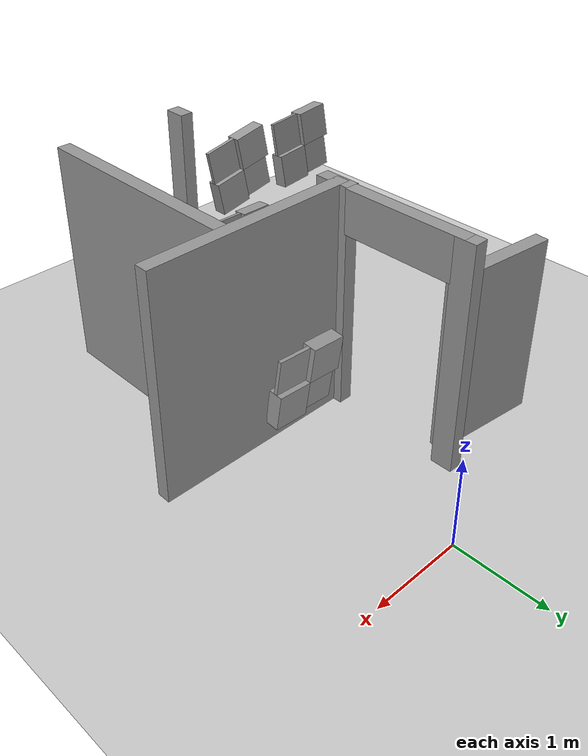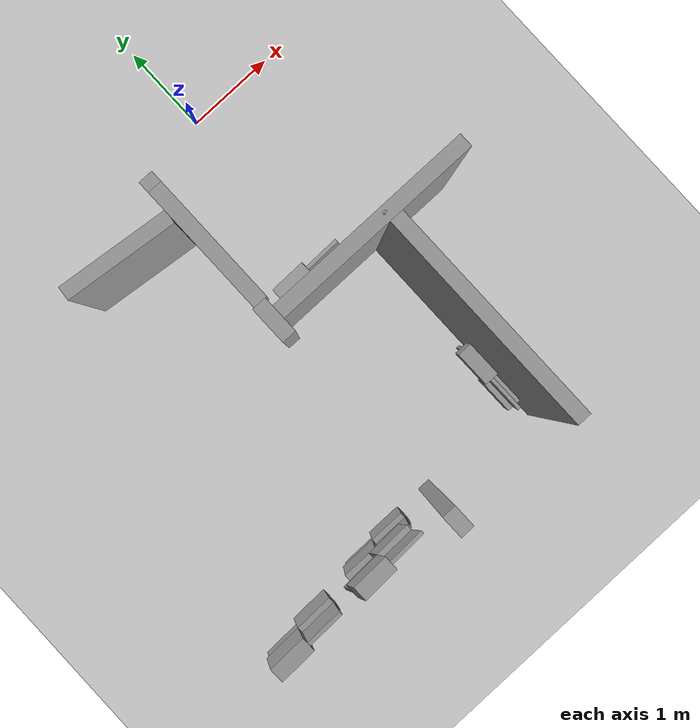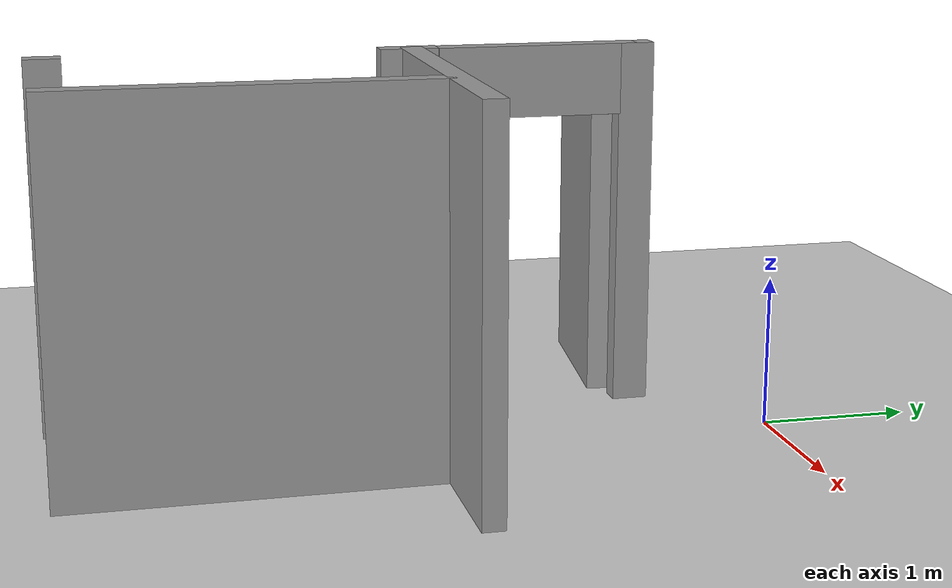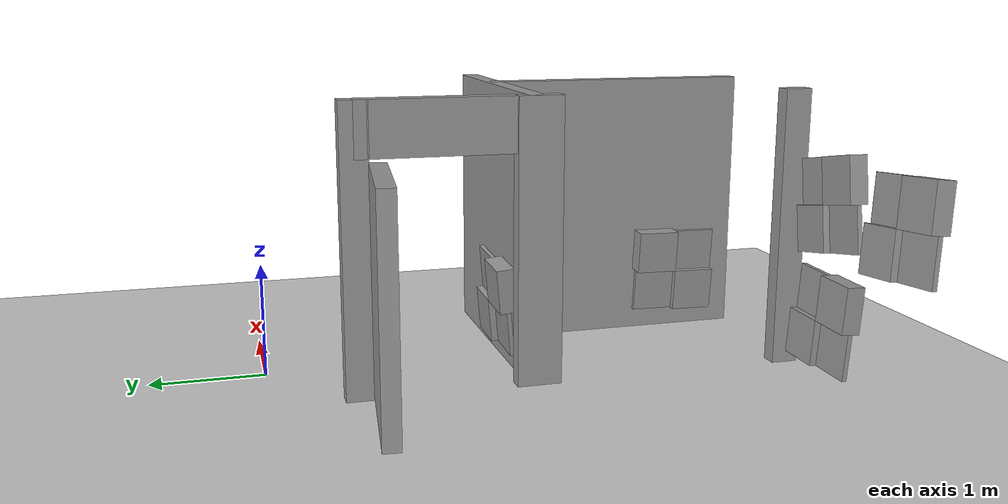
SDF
<sdf version="1.7">
 <world name="default">
  <model name="demo_clean">
   <static>1</static>
   <link name="Wall_19">
    <collision name="Wall_19_Collision">
     <geometry><box><size>2.34163 0.15 2.5</size></box></geometry>
     <pose>0 0 1.25 0 -0 0</pose>
     <surface>
      <friction>
       <ode><mu>1</mu><mu2>1</mu2><fdir1>0 0 0</fdir1><slip1>0</slip1><slip2>0</slip2></ode>
       <torsional>
        <coefficient>1</coefficient>
        <patch_radius>0</patch_radius>
        <surface_radius>0</surface_radius>
        <use_patch_radius>1</use_patch_radius>
        <ode><slip>0</slip></ode>
       </torsional>
      </friction>
      <bounce><restitution_coefficient>0</restitution_coefficient><threshold>1e+06</threshold></bounce>
      <contact>
       <collide_without_contact>0</collide_without_contact>
       <collide_without_contact_bitmask>1</collide_without_contact_bitmask>
       <collide_bitmask>1</collide_bitmask>
       <ode>
        <soft_cfm>0</soft_cfm>
        <soft_erp>0.2</soft_erp>
        <kp>1e+13</kp>
        <kd>1</kd>
        <max_vel>0.01</max_vel>
        <min_depth>0</min_depth>
       </ode>
       <bullet>
        <split_impulse>1</split_impulse>
        <split_impulse_penetration_threshold>-0.01</split_impulse_penetration_threshold>
        <soft_cfm>0</soft_cfm>
        <soft_erp>0.2</soft_erp>
        <kp>1e+13</kp>
        <kd>1</kd>
       </bullet>
      </contact>
     </surface>
    </collision>
    <visual name="Wall_19_Visual">
     <geometry><box><size>2.34163 0.15 2.5</size></box></geometry>
     <material>
      <script><name>Gazebo/Grey</name><uri>file://media/materials/scripts/gazebo.material</uri></script>
      <ambient>1 1 1 1</ambient>
      <shader type="pixel"><normal_map>default</normal_map></shader>
     </material>
     <pose>0 0 1.25 0 -0 0</pose>
    </visual>
    <inertial>
     <inertia><ixx>0</ixx><iyy>0</iyy><izz>0</izz><ixy>0</ixy><ixz>0</ixz><iyz>0</iyz></inertia>
     <mass>1</mass>
    </inertial>
    <pose>0.295923 -2.24288 0 0 -0 0</pose>
   </link>
   <link name="Wall_21">
    <collision name="Wall_21_Collision">
     <geometry><box><size>2.5 0.15 2.5</size></box></geometry>
     <pose>0 0 1.25 0 -0 0</pose>
     <surface>
      <friction>
       <ode><mu>1</mu><mu2>1</mu2><fdir1>0 0 0</fdir1><slip1>0</slip1><slip2>0</slip2></ode>
       <torsional>
        <coefficient>1</coefficient>
        <patch_radius>0</patch_radius>
        <surface_radius>0</surface_radius>
        <use_patch_radius>1</use_patch_radius>
        <ode><slip>0</slip></ode>
       </torsional>
      </friction>
      <bounce><restitution_coefficient>0</restitution_coefficient><threshold>1e+06</threshold></bounce>
      <contact>
       <collide_without_contact>0</collide_without_contact>
       <collide_without_contact_bitmask>1</collide_without_contact_bitmask>
       <collide_bitmask>1</collide_bitmask>
       <ode>
        <soft_cfm>0</soft_cfm>
        <soft_erp>0.2</soft_erp>
        <kp>1e+13</kp>
        <kd>1</kd>
        <max_vel>0.01</max_vel>
        <min_depth>0</min_depth>
       </ode>
       <bullet>
        <split_impulse>1</split_impulse>
        <split_impulse_penetration_threshold>-0.01</split_impulse_penetration_threshold>
        <soft_cfm>0</soft_cfm>
        <soft_erp>0.2</soft_erp>
        <kp>1e+13</kp>
        <kd>1</kd>
       </bullet>
      </contact>
     </surface>
    </collision>
    <visual name="Wall_21_Visual">
     <geometry><box><size>2.5 0.15 2.5</size></box></geometry>
     <material>
      <script><name>Gazebo/Grey</name><uri>file://media/materials/scripts/gazebo.material</uri></script>
      <ambient>1 1 1 1</ambient>
      <shader type="pixel"><normal_map>default</normal_map></shader>
     </material>
     <pose>0 0 1.25 0 -0 0</pose>
    </visual>
    <pose>0.573753 -3.46553 0 0 0 -1.5708</pose>
   </link>
   <link name="Wall_21_clone">
    <collision name="Wall_21_Collision">
     <geometry><box><size>0.240964 0.15 2.5</size></box></geometry>
     <pose>0 0 1.25 0 -0 0</pose>
     <surface>
      <friction>
       <ode><mu>1</mu><mu2>1</mu2><fdir1>0 0 0</fdir1><slip1>0</slip1><slip2>0</slip2></ode>
       <torsional>
        <coefficient>1</coefficient>
        <patch_radius>0</patch_radius>
        <surface_radius>0</surface_radius>
        <use_patch_radius>1</use_patch_radius>
        <ode><slip>0</slip></ode>
       </torsional>
      </friction>
      <bounce><restitution_coefficient>0</restitution_coefficient><threshold>1e+06</threshold></bounce>
      <contact>
       <collide_without_contact>0</collide_without_contact>
       <collide_without_contact_bitmask>1</collide_without_contact_bitmask>
       <collide_bitmask>1</collide_bitmask>
       <ode>
        <soft_cfm>0</soft_cfm>
        <soft_erp>0.2</soft_erp>
        <kp>1e+13</kp>
        <kd>1</kd>
        <max_vel>0.01</max_vel>
        <min_depth>0</min_depth>
       </ode>
       <bullet>
        <split_impulse>1</split_impulse>
        <split_impulse_penetration_threshold>-0.01</split_impulse_penetration_threshold>
        <soft_cfm>0</soft_cfm>
        <soft_erp>0.2</soft_erp>
        <kp>1e+13</kp>
        <kd>1</kd>
       </bullet>
      </contact>
     </surface>
    </collision>
    <visual name="Wall_21_Visual">
     <geometry><box><size>0.240964 0.15 2.5</size></box></geometry>
     <material>
      <script><name>Gazebo/Grey</name><uri>file://media/materials/scripts/gazebo.material</uri></script>
      <ambient>1 1 1 1</ambient>
      <shader type="pixel"><normal_map>default</normal_map></shader>
     </material>
     <pose>0 0 1.25 0 -0 0</pose>
    </visual>
    <inertial>
     <inertia><ixx>0</ixx><iyy>0</iyy><izz>0</izz><ixy>0</ixy><ixz>0</ixz><iyz>0</iyz></inertia>
     <mass>1</mass>
    </inertial>
    <pose>-0.802658 -0.717313 0 0 0 -1.5708</pose>
   </link>
   <link name="Wall_21_clone_0">
    <collision name="Wall_21_Collision">
     <geometry><box><size>0.394105 0.15 2.5</size></box></geometry>
     <pose>0 0 1.25 0 -0 0</pose>
     <surface>
      <friction>
       <ode><mu>1</mu><mu2>1</mu2><fdir1>0 0 0</fdir1><slip1>0</slip1><slip2>0</slip2></ode>
       <torsional>
        <coefficient>1</coefficient>
        <patch_radius>0</patch_radius>
        <surface_radius>0</surface_radius>
        <use_patch_radius>1</use_patch_radius>
        <ode><slip>0</slip></ode>
       </torsional>
      </friction>
      <bounce><restitution_coefficient>0</restitution_coefficient><threshold>1e+06</threshold></bounce>
      <contact>
       <collide_without_contact>0</collide_without_contact>
       <collide_without_contact_bitmask>1</collide_without_contact_bitmask>
       <collide_bitmask>1</collide_bitmask>
       <ode>
        <soft_cfm>0</soft_cfm>
        <soft_erp>0.2</soft_erp>
        <kp>1e+13</kp>
        <kd>1</kd>
        <max_vel>0.01</max_vel>
        <min_depth>0</min_depth>
       </ode>
       <bullet>
        <split_impulse>1</split_impulse>
        <split_impulse_penetration_threshold>-0.01</split_impulse_penetration_threshold>
        <soft_cfm>0</soft_cfm>
        <soft_erp>0.2</soft_erp>
        <kp>1e+13</kp>
        <kd>1</kd>
       </bullet>
      </contact>
     </surface>
    </collision>
    <visual name="Wall_21_Visual">
     <geometry><box><size>0.394105 0.15 2.5</size></box></geometry>
     <material>
      <script><name>Gazebo/Grey</name><uri>file://media/materials/scripts/gazebo.material</uri></script>
      <ambient>1 1 1 1</ambient>
      <shader type="pixel"><normal_map>default</normal_map></shader>
     </material>
     <pose>0 0 1.25 0 -0 0</pose>
    </visual>
    <inertial>
     <inertia><ixx>0</ixx><iyy>0</iyy><izz>0</izz><ixy>0</ixy><ixz>0</ixz><iyz>0</iyz></inertia>
     <mass>1</mass>
    </inertial>
    <pose>-0.820336 -2.26773 0 0 0 -1.5708</pose>
   </link>
   <link name="Wall_21_clone_0_clone_0_clone_clone">
    <gravity>0</gravity>
    <collision name="Wall_21_Collision">
     <geometry><box><size>1.1941 0.15 1.96033</size></box></geometry>
     <pose>0 0 1.25 0 -0 0</pose>
     <surface>
      <friction>
       <ode><mu>1</mu><mu2>1</mu2><fdir1>0 0 0</fdir1><slip1>0</slip1><slip2>0</slip2></ode>
       <torsional>
        <coefficient>1</coefficient>
        <patch_radius>0</patch_radius>
        <surface_radius>0</surface_radius>
        <use_patch_radius>1</use_patch_radius>
        <ode><slip>0</slip></ode>
       </torsional>
      </friction>
      <bounce><restitution_coefficient>0</restitution_coefficient><threshold>1e+06</threshold></bounce>
      <contact>
       <collide_without_contact>0</collide_without_contact>
       <collide_without_contact_bitmask>1</collide_without_contact_bitmask>
       <collide_bitmask>1</collide_bitmask>
       <ode>
        <soft_cfm>0</soft_cfm>
        <soft_erp>0.2</soft_erp>
        <kp>1e+13</kp>
        <kd>1</kd>
        <max_vel>0.01</max_vel>
        <min_depth>0</min_depth>
       </ode>
       <bullet>
        <split_impulse>1</split_impulse>
        <split_impulse_penetration_threshold>-0.01</split_impulse_penetration_threshold>
        <soft_cfm>0</soft_cfm>
        <soft_erp>0.2</soft_erp>
        <kp>1e+13</kp>
        <kd>1</kd>
       </bullet>
      </contact>
     </surface>
    </collision>
    <visual name="Wall_21_Visual">
     <geometry><box><size>1.1941 0.15 1.96033</size></box></geometry>
     <material>
      <script><name>Gazebo/Grey</name><uri>file://media/materials/scripts/gazebo.material</uri></script>
      <ambient>1 1 1 1</ambient>
      <shader type="pixel"><normal_map>__default__</normal_map></shader>
      <diffuse>0.7 0.7 0.7 1</diffuse>
      <specular>0.01 0.01 0.01 1</specular>
      <emissive>0 0 0 1</emissive>
     </material>
     <pose>0 0 1.25 0 -0 0</pose>
    </visual>
    <inertial>
     <inertia><ixx>0</ixx><iyy>0</iyy><izz>0</izz><ixy>0</ixy><ixz>0</ixz><iyz>0</iyz></inertia>
     <mass>1</mass>
    </inertial>
    <pose>-1.47342 -0.839052 -0.23202 0 -0 3.0297</pose>
   </link>
   <link name="Wall_21_clone_clone">
    <collision name="Wall_21_Collision">
     <geometry><box><size>0.240964 0.15 2.5</size></box></geometry>
     <pose>0 0 1.25 0 -0 0</pose>
     <surface>
      <friction>
       <ode><mu>1</mu><mu2>1</mu2><fdir1>0 0 0</fdir1><slip1>0</slip1><slip2>0</slip2></ode>
       <torsional>
        <coefficient>1</coefficient>
        <patch_radius>0</patch_radius>
        <surface_radius>0</surface_radius>
        <use_patch_radius>1</use_patch_radius>
        <ode><slip>0</slip></ode>
       </torsional>
      </friction>
      <bounce><restitution_coefficient>0</restitution_coefficient><threshold>1e+06</threshold></bounce>
      <contact>
       <collide_without_contact>0</collide_without_contact>
       <collide_without_contact_bitmask>1</collide_without_contact_bitmask>
       <collide_bitmask>1</collide_bitmask>
       <ode>
        <soft_cfm>0</soft_cfm>
        <soft_erp>0.2</soft_erp>
        <kp>1e+13</kp>
        <kd>1</kd>
        <max_vel>0.01</max_vel>
        <min_depth>0</min_depth>
       </ode>
       <bullet>
        <split_impulse>1</split_impulse>
        <split_impulse_penetration_threshold>-0.01</split_impulse_penetration_threshold>
        <soft_cfm>0</soft_cfm>
        <soft_erp>0.2</soft_erp>
        <kp>1e+13</kp>
        <kd>1</kd>
       </bullet>
      </contact>
     </surface>
    </collision>
    <visual name="Wall_21_Visual">
     <geometry><box><size>0.240964 0.15 2.5</size></box></geometry>
     <material>
      <script><name>Gazebo/Grey</name><uri>file://media/materials/scripts/gazebo.material</uri></script>
      <ambient>1 1 1 1</ambient>
      <shader type="pixel"><normal_map>default</normal_map></shader>
     </material>
     <pose>0 0 1.25 0 -0 0</pose>
    </visual>
    <inertial>
     <inertia><ixx>0</ixx><iyy>0</iyy><izz>0</izz><ixy>0</ixy><ixz>0</ixz><iyz>0</iyz></inertia>
     <mass>1</mass>
    </inertial>
    <pose>-0.824993 -4.62184 0 0 0 -1.5708</pose>
   </link>
   <link name="Wall_28_clone_clone_clone">
    <gravity>0</gravity>
    <collision name="Wall_28_Collision">
     <geometry><box><size>1.35894 0.15 0.476648</size></box></geometry>
     <pose>0 0 1.25 0 -0 0</pose>
     <surface>
      <friction>
       <ode><mu>1</mu><mu2>1</mu2><fdir1>0 0 0</fdir1><slip1>0</slip1><slip2>0</slip2></ode>
       <torsional>
        <coefficient>1</coefficient>
        <patch_radius>0</patch_radius>
        <surface_radius>0</surface_radius>
        <use_patch_radius>1</use_patch_radius>
        <ode><slip>0</slip></ode>
       </torsional>
      </friction>
      <bounce><restitution_coefficient>0</restitution_coefficient><threshold>1e+06</threshold></bounce>
      <contact>
       <collide_without_contact>0</collide_without_contact>
       <collide_without_contact_bitmask>1</collide_without_contact_bitmask>
       <collide_bitmask>1</collide_bitmask>
       <ode>
        <soft_cfm>0</soft_cfm>
        <soft_erp>0.2</soft_erp>
        <kp>1e+13</kp>
        <kd>1</kd>
        <max_vel>0.01</max_vel>
        <min_depth>0</min_depth>
       </ode>
       <bullet>
        <split_impulse>1</split_impulse>
        <split_impulse_penetration_threshold>-0.01</split_impulse_penetration_threshold>
        <soft_cfm>0</soft_cfm>
        <soft_erp>0.2</soft_erp>
        <kp>1e+13</kp>
        <kd>1</kd>
       </bullet>
      </contact>
     </surface>
    </collision>
    <visual name="Wall_28_Visual">
     <geometry><box><size>1.35894 0.15 0.476648</size></box></geometry>
     <material>
      <script><name>Gazebo/Grey</name><uri>file://media/materials/scripts/gazebo.material</uri></script>
      <ambient>1 1 1 1</ambient>
      <shader type="pixel"><normal_map>__default__</normal_map></shader>
     </material>
     <pose>0 0 1.25 0 -0 0</pose>
    </visual>
    <inertial>
     <inertia><ixx>0</ixx><iyy>0</iyy><izz>0</izz><ixy>0</ixy><ixz>0</ixz><iyz>0</iyz></inertia>
     <mass>1</mass>
    </inertial>
    <pose>-0.802228 -1.39589 1.01168 0 0 -1.57004</pose>
   </link>
  </model>
  <model name="ground_plane">
   <static>1</static>
   <link name="link">
    <collision name="collision">
     <geometry><plane><normal>0 0 1</normal><size>100 100</size></plane></geometry>
     <surface>
      <contact><collide_bitmask>65535</collide_bitmask></contact>
      <friction><ode><mu>100</mu><mu2>50</mu2></ode></friction>
     </surface>
    </collision>
    <visual name="visual">
     <cast_shadows>0</cast_shadows>
     <geometry><plane><normal>0 0 1</normal><size>100 100</size></plane></geometry>
     <material>
      <script><uri>file://media/materials/scripts/gazebo.material</uri><name>Gazebo/Grey</name></script>
     </material>
    </visual>
   </link>
  </model>
  <model name="wall_slate_15">
   <static>1</static>
   <link name="link_0">
    <inertial><mass>1</mass></inertial>
    <gravity>0</gravity>
    <visual name="visual">
     <pose>0 0.2 0.2 0 -0 0</pose>
     <geometry><box><size>0.16 0.4 0.4</size></box></geometry>
     <material>
      <lighting>1</lighting>
      <script><uri>file://media/materials/scripts/gazebo.material</uri><name>Gazebo/Grey</name></script>
      <shader type="pixel"><normal_map>__default__</normal_map></shader>
      <ambient>0.3 0.3 0.3 1</ambient>
      <diffuse>0.7 0.7 0.7 1</diffuse>
      <specular>0.01 0.01 0.01 1</specular>
      <emissive>0 0 0 1</emissive>
     </material>
    </visual>
    <visual name="ModelPreview_0::link_0::visual_1">
     <pose>0 0.2 -0.2 0 -0 0</pose>
     <geometry><box><size>0.04 0.4 0.4</size></box></geometry>
     <material>
      <lighting>1</lighting>
      <script><uri>file://media/materials/scripts/gazebo.material</uri><name>Gazebo/Grey</name></script>
      <shader type="pixel"><normal_map>__default__</normal_map></shader>
      <ambient>0.3 0.3 0.3 1</ambient>
      <diffuse>0.7 0.7 0.7 1</diffuse>
      <specular>0.01 0.01 0.01 1</specular>
      <emissive>0 0 0 1</emissive>
     </material>
    </visual>
    <visual name="ModelPreview_0::link_0::visual_2">
     <pose>0 -0.2 0.2 0 -0 0</pose>
     <geometry><box><size>0.04 0.4 0.4</size></box></geometry>
     <material>
      <lighting>1</lighting>
      <script><uri>file://media/materials/scripts/gazebo.material</uri><name>Gazebo/Grey</name></script>
      <shader type="pixel"><normal_map>__default__</normal_map></shader>
      <ambient>0.3 0.3 0.3 1</ambient>
      <diffuse>0.7 0.7 0.7 1</diffuse>
      <specular>0.01 0.01 0.01 1</specular>
      <emissive>0 0 0 1</emissive>
     </material>
    </visual>
    <visual name="ModelPreview_0::link_0::visual_3">
     <pose>0 -0.2 -0.2 0 -0 0</pose>
     <geometry><box><size>0.16 0.4 0.4</size></box></geometry>
     <material>
      <lighting>1</lighting>
      <script><uri>file://media/materials/scripts/gazebo.material</uri><name>Gazebo/Grey</name></script>
      <shader type="pixel"><normal_map>__default__</normal_map></shader>
      <ambient>0.3 0.3 0.3 1</ambient>
      <diffuse>0.7 0.7 0.7 1</diffuse>
      <specular>0.01 0.01 0.01 1</specular>
      <emissive>0 0 0 1</emissive>
     </material>
    </visual>
    <collision name="collision_2">
     <pose>0 -0.2 0.2 0 -0 0</pose>
     <geometry><box><size>0.04 0.4 0.4</size></box></geometry>
     <surface>
      <friction>
       <ode><mu>1</mu><mu2>1</mu2><fdir1>0 0 0</fdir1><slip1>0</slip1><slip2>0</slip2></ode>
       <torsional>
        <coefficient>1</coefficient>
        <patch_radius>0</patch_radius>
        <surface_radius>0</surface_radius>
        <use_patch_radius>1</use_patch_radius>
        <ode><slip>0</slip></ode>
       </torsional>
      </friction>
      <bounce><restitution_coefficient>0</restitution_coefficient><threshold>1e+06</threshold></bounce>
      <contact>
       <collide_without_contact>0</collide_without_contact>
       <collide_without_contact_bitmask>1</collide_without_contact_bitmask>
       <collide_bitmask>1</collide_bitmask>
       <ode>
        <soft_cfm>0</soft_cfm>
        <soft_erp>0.2</soft_erp>
        <kp>1e+13</kp>
        <kd>1</kd>
        <max_vel>0.01</max_vel>
        <min_depth>0</min_depth>
       </ode>
       <bullet>
        <split_impulse>1</split_impulse>
        <split_impulse_penetration_threshold>-0.01</split_impulse_penetration_threshold>
        <soft_cfm>0</soft_cfm>
        <soft_erp>0.2</soft_erp>
        <kp>1e+13</kp>
        <kd>1</kd>
       </bullet>
      </contact>
     </surface>
    </collision>
    <collision name="collision_1">
     <pose>0 0.2 -0.2 0 -0 0</pose>
     <geometry><box><size>0.04 0.4 0.4</size></box></geometry>
     <surface>
      <friction>
       <ode><mu>1</mu><mu2>1</mu2><fdir1>0 0 0</fdir1><slip1>0</slip1><slip2>0</slip2></ode>
       <torsional>
        <coefficient>1</coefficient>
        <patch_radius>0</patch_radius>
        <surface_radius>0</surface_radius>
        <use_patch_radius>1</use_patch_radius>
        <ode><slip>0</slip></ode>
       </torsional>
      </friction>
      <bounce><restitution_coefficient>0</restitution_coefficient><threshold>1e+06</threshold></bounce>
      <contact>
       <collide_without_contact>0</collide_without_contact>
       <collide_without_contact_bitmask>1</collide_without_contact_bitmask>
       <collide_bitmask>1</collide_bitmask>
       <ode>
        <soft_cfm>0</soft_cfm>
        <soft_erp>0.2</soft_erp>
        <kp>1e+13</kp>
        <kd>1</kd>
        <max_vel>0.01</max_vel>
        <min_depth>0</min_depth>
       </ode>
       <bullet>
        <split_impulse>1</split_impulse>
        <split_impulse_penetration_threshold>-0.01</split_impulse_penetration_threshold>
        <soft_cfm>0</soft_cfm>
        <soft_erp>0.2</soft_erp>
        <kp>1e+13</kp>
        <kd>1</kd>
       </bullet>
      </contact>
     </surface>
    </collision>
    <collision name="collision_4">
     <pose>0 0.2 0.2 0 -0 0</pose>
     <geometry><box><size>0.16 0.4 0.4</size></box></geometry>
     <surface>
      <friction>
       <ode><mu>1</mu><mu2>1</mu2><fdir1>0 0 0</fdir1><slip1>0</slip1><slip2>0</slip2></ode>
       <torsional>
        <coefficient>1</coefficient>
        <patch_radius>0</patch_radius>
        <surface_radius>0</surface_radius>
        <use_patch_radius>1</use_patch_radius>
        <ode><slip>0</slip></ode>
       </torsional>
      </friction>
      <bounce><restitution_coefficient>0</restitution_coefficient><threshold>1e+06</threshold></bounce>
      <contact>
       <collide_without_contact>0</collide_without_contact>
       <collide_without_contact_bitmask>1</collide_without_contact_bitmask>
       <collide_bitmask>1</collide_bitmask>
       <ode>
        <soft_cfm>0</soft_cfm>
        <soft_erp>0.2</soft_erp>
        <kp>1e+13</kp>
        <kd>1</kd>
        <max_vel>0.01</max_vel>
        <min_depth>0</min_depth>
       </ode>
       <bullet>
        <split_impulse>1</split_impulse>
        <split_impulse_penetration_threshold>-0.01</split_impulse_penetration_threshold>
        <soft_cfm>0</soft_cfm>
        <soft_erp>0.2</soft_erp>
        <kp>1e+13</kp>
        <kd>1</kd>
       </bullet>
      </contact>
     </surface>
    </collision>
    <collision name="collision_3">
     <pose>0 -0.2 -0.2 0 -0 0</pose>
     <geometry><box><size>0.16 0.4 0.4</size></box></geometry>
     <surface>
      <friction>
       <ode><mu>1</mu><mu2>1</mu2><fdir1>0 0 0</fdir1><slip1>0</slip1><slip2>0</slip2></ode>
       <torsional>
        <coefficient>1</coefficient>
        <patch_radius>0</patch_radius>
        <surface_radius>0</surface_radius>
        <use_patch_radius>1</use_patch_radius>
        <ode><slip>0</slip></ode>
       </torsional>
      </friction>
      <bounce><restitution_coefficient>0</restitution_coefficient><threshold>1e+06</threshold></bounce>
      <contact>
       <collide_without_contact>0</collide_without_contact>
       <collide_without_contact_bitmask>1</collide_without_contact_bitmask>
       <collide_bitmask>1</collide_bitmask>
       <ode>
        <soft_cfm>0</soft_cfm>
        <soft_erp>0.2</soft_erp>
        <kp>1e+13</kp>
        <kd>1</kd>
        <max_vel>0.01</max_vel>
        <min_depth>0</min_depth>
       </ode>
       <bullet>
        <split_impulse>1</split_impulse>
        <split_impulse_penetration_threshold>-0.01</split_impulse_penetration_threshold>
        <soft_cfm>0</soft_cfm>
        <soft_erp>0.2</soft_erp>
        <kp>1e+13</kp>
        <kd>1</kd>
       </bullet>
      </contact>
     </surface>
    </collision>
   </link>
   <pose>-1.59149 -4.565 1.6 0.18 -0.02 1.5757</pose>
  </model>
  <model name="wall_slate_40">
   <static>1</static>
   <link name="link_0">
    <inertial><mass>1</mass></inertial>
    <gravity>0</gravity>
    <visual name="visual">
     <pose>0 0.2 0.2 0 -0 0</pose>
     <geometry><box><size>0.16 0.4 0.4</size></box></geometry>
     <material>
      <lighting>1</lighting>
      <script><uri>file://media/materials/scripts/gazebo.material</uri><name>Gazebo/Grey</name></script>
      <shader type="pixel"><normal_map>__default__</normal_map></shader>
      <ambient>0.3 0.3 0.3 1</ambient>
      <diffuse>0.7 0.7 0.7 1</diffuse>
      <specular>0.01 0.01 0.01 1</specular>
      <emissive>0 0 0 1</emissive>
     </material>
    </visual>
    <visual name="ModelPreview_0::link_0::visual_1">
     <pose>0 0.2 -0.2 0 -0 0</pose>
     <geometry><box><size>0.04 0.4 0.4</size></box></geometry>
     <material>
      <lighting>1</lighting>
      <script><uri>file://media/materials/scripts/gazebo.material</uri><name>Gazebo/Grey</name></script>
      <shader type="pixel"><normal_map>__default__</normal_map></shader>
      <ambient>0.3 0.3 0.3 1</ambient>
      <diffuse>0.7 0.7 0.7 1</diffuse>
      <specular>0.01 0.01 0.01 1</specular>
      <emissive>0 0 0 1</emissive>
     </material>
    </visual>
    <visual name="ModelPreview_0::link_0::visual_2">
     <pose>0 -0.2 0.2 0 -0 0</pose>
     <geometry><box><size>0.04 0.4 0.4</size></box></geometry>
     <material>
      <lighting>1</lighting>
      <script><uri>file://media/materials/scripts/gazebo.material</uri><name>Gazebo/Grey</name></script>
      <shader type="pixel"><normal_map>__default__</normal_map></shader>
      <ambient>0.3 0.3 0.3 1</ambient>
      <diffuse>0.7 0.7 0.7 1</diffuse>
      <specular>0.01 0.01 0.01 1</specular>
      <emissive>0 0 0 1</emissive>
     </material>
    </visual>
    <visual name="ModelPreview_0::link_0::visual_3">
     <pose>0 -0.2 -0.2 0 -0 0</pose>
     <geometry><box><size>0.16 0.4 0.4</size></box></geometry>
     <material>
      <lighting>1</lighting>
      <script><uri>file://media/materials/scripts/gazebo.material</uri><name>Gazebo/Grey</name></script>
      <shader type="pixel"><normal_map>__default__</normal_map></shader>
      <ambient>0.3 0.3 0.3 1</ambient>
      <diffuse>0.7 0.7 0.7 1</diffuse>
      <specular>0.01 0.01 0.01 1</specular>
      <emissive>0 0 0 1</emissive>
     </material>
    </visual>
    <collision name="collision_2">
     <pose>0 -0.2 0.2 0 -0 0</pose>
     <geometry><box><size>0.04 0.4 0.4</size></box></geometry>
     <surface>
      <friction>
       <ode><mu>1</mu><mu2>1</mu2><fdir1>0 0 0</fdir1><slip1>0</slip1><slip2>0</slip2></ode>
       <torsional>
        <coefficient>1</coefficient>
        <patch_radius>0</patch_radius>
        <surface_radius>0</surface_radius>
        <use_patch_radius>1</use_patch_radius>
        <ode><slip>0</slip></ode>
       </torsional>
      </friction>
      <bounce><restitution_coefficient>0</restitution_coefficient><threshold>1e+06</threshold></bounce>
      <contact>
       <collide_without_contact>0</collide_without_contact>
       <collide_without_contact_bitmask>1</collide_without_contact_bitmask>
       <collide_bitmask>1</collide_bitmask>
       <ode>
        <soft_cfm>0</soft_cfm>
        <soft_erp>0.2</soft_erp>
        <kp>1e+13</kp>
        <kd>1</kd>
        <max_vel>0.01</max_vel>
        <min_depth>0</min_depth>
       </ode>
       <bullet>
        <split_impulse>1</split_impulse>
        <split_impulse_penetration_threshold>-0.01</split_impulse_penetration_threshold>
        <soft_cfm>0</soft_cfm>
        <soft_erp>0.2</soft_erp>
        <kp>1e+13</kp>
        <kd>1</kd>
       </bullet>
      </contact>
     </surface>
    </collision>
    <collision name="collision_1">
     <pose>0 0.2 -0.2 0 -0 0</pose>
     <geometry><box><size>0.04 0.4 0.4</size></box></geometry>
     <surface>
      <friction>
       <ode><mu>1</mu><mu2>1</mu2><fdir1>0 0 0</fdir1><slip1>0</slip1><slip2>0</slip2></ode>
       <torsional>
        <coefficient>1</coefficient>
        <patch_radius>0</patch_radius>
        <surface_radius>0</surface_radius>
        <use_patch_radius>1</use_patch_radius>
        <ode><slip>0</slip></ode>
       </torsional>
      </friction>
      <bounce><restitution_coefficient>0</restitution_coefficient><threshold>1e+06</threshold></bounce>
      <contact>
       <collide_without_contact>0</collide_without_contact>
       <collide_without_contact_bitmask>1</collide_without_contact_bitmask>
       <collide_bitmask>1</collide_bitmask>
       <ode>
        <soft_cfm>0</soft_cfm>
        <soft_erp>0.2</soft_erp>
        <kp>1e+13</kp>
        <kd>1</kd>
        <max_vel>0.01</max_vel>
        <min_depth>0</min_depth>
       </ode>
       <bullet>
        <split_impulse>1</split_impulse>
        <split_impulse_penetration_threshold>-0.01</split_impulse_penetration_threshold>
        <soft_cfm>0</soft_cfm>
        <soft_erp>0.2</soft_erp>
        <kp>1e+13</kp>
        <kd>1</kd>
       </bullet>
      </contact>
     </surface>
    </collision>
    <collision name="collision_4">
     <pose>0 0.2 0.2 0 -0 0</pose>
     <geometry><box><size>0.16 0.4 0.4</size></box></geometry>
     <surface>
      <friction>
       <ode><mu>1</mu><mu2>1</mu2><fdir1>0 0 0</fdir1><slip1>0</slip1><slip2>0</slip2></ode>
       <torsional>
        <coefficient>1</coefficient>
        <patch_radius>0</patch_radius>
        <surface_radius>0</surface_radius>
        <use_patch_radius>1</use_patch_radius>
        <ode><slip>0</slip></ode>
       </torsional>
      </friction>
      <bounce><restitution_coefficient>0</restitution_coefficient><threshold>1e+06</threshold></bounce>
      <contact>
       <collide_without_contact>0</collide_without_contact>
       <collide_without_contact_bitmask>1</collide_without_contact_bitmask>
       <collide_bitmask>1</collide_bitmask>
       <ode>
        <soft_cfm>0</soft_cfm>
        <soft_erp>0.2</soft_erp>
        <kp>1e+13</kp>
        <kd>1</kd>
        <max_vel>0.01</max_vel>
        <min_depth>0</min_depth>
       </ode>
       <bullet>
        <split_impulse>1</split_impulse>
        <split_impulse_penetration_threshold>-0.01</split_impulse_penetration_threshold>
        <soft_cfm>0</soft_cfm>
        <soft_erp>0.2</soft_erp>
        <kp>1e+13</kp>
        <kd>1</kd>
       </bullet>
      </contact>
     </surface>
    </collision>
    <collision name="collision_3">
     <pose>0 -0.2 -0.2 0 -0 0</pose>
     <geometry><box><size>0.16 0.4 0.4</size></box></geometry>
     <surface>
      <friction>
       <ode><mu>1</mu><mu2>1</mu2><fdir1>0 0 0</fdir1><slip1>0</slip1><slip2>0</slip2></ode>
       <torsional>
        <coefficient>1</coefficient>
        <patch_radius>0</patch_radius>
        <surface_radius>0</surface_radius>
        <use_patch_radius>1</use_patch_radius>
        <ode><slip>0</slip></ode>
       </torsional>
      </friction>
      <bounce><restitution_coefficient>0</restitution_coefficient><threshold>1e+06</threshold></bounce>
      <contact>
       <collide_without_contact>0</collide_without_contact>
       <collide_without_contact_bitmask>1</collide_without_contact_bitmask>
       <collide_bitmask>1</collide_bitmask>
       <ode>
        <soft_cfm>0</soft_cfm>
        <soft_erp>0.2</soft_erp>
        <kp>1e+13</kp>
        <kd>1</kd>
        <max_vel>0.01</max_vel>
        <min_depth>0</min_depth>
       </ode>
       <bullet>
        <split_impulse>1</split_impulse>
        <split_impulse_penetration_threshold>-0.01</split_impulse_penetration_threshold>
        <soft_cfm>0</soft_cfm>
        <soft_erp>0.2</soft_erp>
        <kp>1e+13</kp>
        <kd>1</kd>
       </bullet>
      </contact>
     </surface>
    </collision>
   </link>
   <pose>-2.59149 -4.565 1.6 0.08 -0.1 1.5757</pose>
  </model>
  <model name="wall_slate_67">
   <static>1</static>
   <link name="link_0">
    <inertial><mass>1</mass></inertial>
    <gravity>0</gravity>
    <visual name="visual">
     <pose>0 0.2 0.2 0 -0 0</pose>
     <geometry><box><size>0.16 0.4 0.4</size></box></geometry>
     <material>
      <lighting>1</lighting>
      <script><uri>file://media/materials/scripts/gazebo.material</uri><name>Gazebo/Grey</name></script>
      <shader type="pixel"><normal_map>__default__</normal_map></shader>
      <ambient>0.3 0.3 0.3 1</ambient>
      <diffuse>0.7 0.7 0.7 1</diffuse>
      <specular>0.01 0.01 0.01 1</specular>
      <emissive>0 0 0 1</emissive>
     </material>
    </visual>
    <visual name="ModelPreview_0::link_0::visual_1">
     <pose>0 0.2 -0.2 0 -0 0</pose>
     <geometry><box><size>0.04 0.4 0.4</size></box></geometry>
     <material>
      <lighting>1</lighting>
      <script><uri>file://media/materials/scripts/gazebo.material</uri><name>Gazebo/Grey</name></script>
      <shader type="pixel"><normal_map>__default__</normal_map></shader>
      <ambient>0.3 0.3 0.3 1</ambient>
      <diffuse>0.7 0.7 0.7 1</diffuse>
      <specular>0.01 0.01 0.01 1</specular>
      <emissive>0 0 0 1</emissive>
     </material>
    </visual>
    <visual name="ModelPreview_0::link_0::visual_2">
     <pose>0 -0.2 0.2 0 -0 0</pose>
     <geometry><box><size>0.04 0.4 0.4</size></box></geometry>
     <material>
      <lighting>1</lighting>
      <script><uri>file://media/materials/scripts/gazebo.material</uri><name>Gazebo/Grey</name></script>
      <shader type="pixel"><normal_map>__default__</normal_map></shader>
      <ambient>0.3 0.3 0.3 1</ambient>
      <diffuse>0.7 0.7 0.7 1</diffuse>
      <specular>0.01 0.01 0.01 1</specular>
      <emissive>0 0 0 1</emissive>
     </material>
    </visual>
    <visual name="ModelPreview_0::link_0::visual_3">
     <pose>0 -0.2 -0.2 0 -0 0</pose>
     <geometry><box><size>0.16 0.4 0.4</size></box></geometry>
     <material>
      <lighting>1</lighting>
      <script><uri>file://media/materials/scripts/gazebo.material</uri><name>Gazebo/Grey</name></script>
      <shader type="pixel"><normal_map>__default__</normal_map></shader>
      <ambient>0.3 0.3 0.3 1</ambient>
      <diffuse>0.7 0.7 0.7 1</diffuse>
      <specular>0.01 0.01 0.01 1</specular>
      <emissive>0 0 0 1</emissive>
     </material>
    </visual>
    <collision name="collision_2">
     <pose>0 -0.2 0.2 0 -0 0</pose>
     <geometry><box><size>0.04 0.4 0.4</size></box></geometry>
     <surface>
      <friction>
       <ode><mu>1</mu><mu2>1</mu2><fdir1>0 0 0</fdir1><slip1>0</slip1><slip2>0</slip2></ode>
       <torsional>
        <coefficient>1</coefficient>
        <patch_radius>0</patch_radius>
        <surface_radius>0</surface_radius>
        <use_patch_radius>1</use_patch_radius>
        <ode><slip>0</slip></ode>
       </torsional>
      </friction>
      <bounce><restitution_coefficient>0</restitution_coefficient><threshold>1e+06</threshold></bounce>
      <contact>
       <collide_without_contact>0</collide_without_contact>
       <collide_without_contact_bitmask>1</collide_without_contact_bitmask>
       <collide_bitmask>1</collide_bitmask>
       <ode>
        <soft_cfm>0</soft_cfm>
        <soft_erp>0.2</soft_erp>
        <kp>1e+13</kp>
        <kd>1</kd>
        <max_vel>0.01</max_vel>
        <min_depth>0</min_depth>
       </ode>
       <bullet>
        <split_impulse>1</split_impulse>
        <split_impulse_penetration_threshold>-0.01</split_impulse_penetration_threshold>
        <soft_cfm>0</soft_cfm>
        <soft_erp>0.2</soft_erp>
        <kp>1e+13</kp>
        <kd>1</kd>
       </bullet>
      </contact>
     </surface>
    </collision>
    <collision name="collision_1">
     <pose>0 0.2 -0.2 0 -0 0</pose>
     <geometry><box><size>0.04 0.4 0.4</size></box></geometry>
     <surface>
      <friction>
       <ode><mu>1</mu><mu2>1</mu2><fdir1>0 0 0</fdir1><slip1>0</slip1><slip2>0</slip2></ode>
       <torsional>
        <coefficient>1</coefficient>
        <patch_radius>0</patch_radius>
        <surface_radius>0</surface_radius>
        <use_patch_radius>1</use_patch_radius>
        <ode><slip>0</slip></ode>
       </torsional>
      </friction>
      <bounce><restitution_coefficient>0</restitution_coefficient><threshold>1e+06</threshold></bounce>
      <contact>
       <collide_without_contact>0</collide_without_contact>
       <collide_without_contact_bitmask>1</collide_without_contact_bitmask>
       <collide_bitmask>1</collide_bitmask>
       <ode>
        <soft_cfm>0</soft_cfm>
        <soft_erp>0.2</soft_erp>
        <kp>1e+13</kp>
        <kd>1</kd>
        <max_vel>0.01</max_vel>
        <min_depth>0</min_depth>
       </ode>
       <bullet>
        <split_impulse>1</split_impulse>
        <split_impulse_penetration_threshold>-0.01</split_impulse_penetration_threshold>
        <soft_cfm>0</soft_cfm>
        <soft_erp>0.2</soft_erp>
        <kp>1e+13</kp>
        <kd>1</kd>
       </bullet>
      </contact>
     </surface>
    </collision>
    <collision name="collision_4">
     <pose>0 0.2 0.2 0 -0 0</pose>
     <geometry><box><size>0.16 0.4 0.4</size></box></geometry>
     <surface>
      <friction>
       <ode><mu>1</mu><mu2>1</mu2><fdir1>0 0 0</fdir1><slip1>0</slip1><slip2>0</slip2></ode>
       <torsional>
        <coefficient>1</coefficient>
        <patch_radius>0</patch_radius>
        <surface_radius>0</surface_radius>
        <use_patch_radius>1</use_patch_radius>
        <ode><slip>0</slip></ode>
       </torsional>
      </friction>
      <bounce><restitution_coefficient>0</restitution_coefficient><threshold>1e+06</threshold></bounce>
      <contact>
       <collide_without_contact>0</collide_without_contact>
       <collide_without_contact_bitmask>1</collide_without_contact_bitmask>
       <collide_bitmask>1</collide_bitmask>
       <ode>
        <soft_cfm>0</soft_cfm>
        <soft_erp>0.2</soft_erp>
        <kp>1e+13</kp>
        <kd>1</kd>
        <max_vel>0.01</max_vel>
        <min_depth>0</min_depth>
       </ode>
       <bullet>
        <split_impulse>1</split_impulse>
        <split_impulse_penetration_threshold>-0.01</split_impulse_penetration_threshold>
        <soft_cfm>0</soft_cfm>
        <soft_erp>0.2</soft_erp>
        <kp>1e+13</kp>
        <kd>1</kd>
       </bullet>
      </contact>
     </surface>
    </collision>
    <collision name="collision_3">
     <pose>0 -0.2 -0.2 0 -0 0</pose>
     <geometry><box><size>0.16 0.4 0.4</size></box></geometry>
     <surface>
      <friction>
       <ode><mu>1</mu><mu2>1</mu2><fdir1>0 0 0</fdir1><slip1>0</slip1><slip2>0</slip2></ode>
       <torsional>
        <coefficient>1</coefficient>
        <patch_radius>0</patch_radius>
        <surface_radius>0</surface_radius>
        <use_patch_radius>1</use_patch_radius>
        <ode><slip>0</slip></ode>
       </torsional>
      </friction>
      <bounce><restitution_coefficient>0</restitution_coefficient><threshold>1e+06</threshold></bounce>
      <contact>
       <collide_without_contact>0</collide_without_contact>
       <collide_without_contact_bitmask>1</collide_without_contact_bitmask>
       <collide_bitmask>1</collide_bitmask>
       <ode>
        <soft_cfm>0</soft_cfm>
        <soft_erp>0.2</soft_erp>
        <kp>1e+13</kp>
        <kd>1</kd>
        <max_vel>0.01</max_vel>
        <min_depth>0</min_depth>
       </ode>
       <bullet>
        <split_impulse>1</split_impulse>
        <split_impulse_penetration_threshold>-0.01</split_impulse_penetration_threshold>
        <soft_cfm>0</soft_cfm>
        <soft_erp>0.2</soft_erp>
        <kp>1e+13</kp>
        <kd>1</kd>
       </bullet>
      </contact>
     </surface>
    </collision>
   </link>
   <pose>-1.59149 -4.565 0.6 -0.02 -0.06 1.5757</pose>
  </model>
  <model name="wall_slate_76">
   <static>1</static>
   <link name="link_0">
    <inertial><mass>1</mass></inertial>
    <gravity>0</gravity>
    <visual name="visual">
     <pose>0 0.2 0.2 0 -0 0</pose>
     <geometry><box><size>0.16 0.4 0.4</size></box></geometry>
     <material>
      <lighting>1</lighting>
      <script><uri>file://media/materials/scripts/gazebo.material</uri><name>Gazebo/Grey</name></script>
      <shader type="pixel"><normal_map>__default__</normal_map></shader>
      <ambient>0.3 0.3 0.3 1</ambient>
      <diffuse>0.7 0.7 0.7 1</diffuse>
      <specular>0.01 0.01 0.01 1</specular>
      <emissive>0 0 0 1</emissive>
     </material>
    </visual>
    <visual name="ModelPreview_0::link_0::visual_1">
     <pose>0 0.2 -0.2 0 -0 0</pose>
     <geometry><box><size>0.04 0.4 0.4</size></box></geometry>
     <material>
      <lighting>1</lighting>
      <script><uri>file://media/materials/scripts/gazebo.material</uri><name>Gazebo/Grey</name></script>
      <shader type="pixel"><normal_map>__default__</normal_map></shader>
      <ambient>0.3 0.3 0.3 1</ambient>
      <diffuse>0.7 0.7 0.7 1</diffuse>
      <specular>0.01 0.01 0.01 1</specular>
      <emissive>0 0 0 1</emissive>
     </material>
    </visual>
    <visual name="ModelPreview_0::link_0::visual_2">
     <pose>0 -0.2 0.2 0 -0 0</pose>
     <geometry><box><size>0.04 0.4 0.4</size></box></geometry>
     <material>
      <lighting>1</lighting>
      <script><uri>file://media/materials/scripts/gazebo.material</uri><name>Gazebo/Grey</name></script>
      <shader type="pixel"><normal_map>__default__</normal_map></shader>
      <ambient>0.3 0.3 0.3 1</ambient>
      <diffuse>0.7 0.7 0.7 1</diffuse>
      <specular>0.01 0.01 0.01 1</specular>
      <emissive>0 0 0 1</emissive>
     </material>
    </visual>
    <visual name="ModelPreview_0::link_0::visual_3">
     <pose>0 -0.2 -0.2 0 -0 0</pose>
     <geometry><box><size>0.16 0.4 0.4</size></box></geometry>
     <material>
      <lighting>1</lighting>
      <script><uri>file://media/materials/scripts/gazebo.material</uri><name>Gazebo/Grey</name></script>
      <shader type="pixel"><normal_map>__default__</normal_map></shader>
      <ambient>0.3 0.3 0.3 1</ambient>
      <diffuse>0.7 0.7 0.7 1</diffuse>
      <specular>0.01 0.01 0.01 1</specular>
      <emissive>0 0 0 1</emissive>
     </material>
    </visual>
    <collision name="collision_2">
     <pose>0 -0.2 0.2 0 -0 0</pose>
     <geometry><box><size>0.04 0.4 0.4</size></box></geometry>
     <surface>
      <friction>
       <ode><mu>1</mu><mu2>1</mu2><fdir1>0 0 0</fdir1><slip1>0</slip1><slip2>0</slip2></ode>
       <torsional>
        <coefficient>1</coefficient>
        <patch_radius>0</patch_radius>
        <surface_radius>0</surface_radius>
        <use_patch_radius>1</use_patch_radius>
        <ode><slip>0</slip></ode>
       </torsional>
      </friction>
      <bounce><restitution_coefficient>0</restitution_coefficient><threshold>1e+06</threshold></bounce>
      <contact>
       <collide_without_contact>0</collide_without_contact>
       <collide_without_contact_bitmask>1</collide_without_contact_bitmask>
       <collide_bitmask>1</collide_bitmask>
       <ode>
        <soft_cfm>0</soft_cfm>
        <soft_erp>0.2</soft_erp>
        <kp>1e+13</kp>
        <kd>1</kd>
        <max_vel>0.01</max_vel>
        <min_depth>0</min_depth>
       </ode>
       <bullet>
        <split_impulse>1</split_impulse>
        <split_impulse_penetration_threshold>-0.01</split_impulse_penetration_threshold>
        <soft_cfm>0</soft_cfm>
        <soft_erp>0.2</soft_erp>
        <kp>1e+13</kp>
        <kd>1</kd>
       </bullet>
      </contact>
     </surface>
    </collision>
    <collision name="collision_1">
     <pose>0 0.2 -0.2 0 -0 0</pose>
     <geometry><box><size>0.04 0.4 0.4</size></box></geometry>
     <surface>
      <friction>
       <ode><mu>1</mu><mu2>1</mu2><fdir1>0 0 0</fdir1><slip1>0</slip1><slip2>0</slip2></ode>
       <torsional>
        <coefficient>1</coefficient>
        <patch_radius>0</patch_radius>
        <surface_radius>0</surface_radius>
        <use_patch_radius>1</use_patch_radius>
        <ode><slip>0</slip></ode>
       </torsional>
      </friction>
      <bounce><restitution_coefficient>0</restitution_coefficient><threshold>1e+06</threshold></bounce>
      <contact>
       <collide_without_contact>0</collide_without_contact>
       <collide_without_contact_bitmask>1</collide_without_contact_bitmask>
       <collide_bitmask>1</collide_bitmask>
       <ode>
        <soft_cfm>0</soft_cfm>
        <soft_erp>0.2</soft_erp>
        <kp>1e+13</kp>
        <kd>1</kd>
        <max_vel>0.01</max_vel>
        <min_depth>0</min_depth>
       </ode>
       <bullet>
        <split_impulse>1</split_impulse>
        <split_impulse_penetration_threshold>-0.01</split_impulse_penetration_threshold>
        <soft_cfm>0</soft_cfm>
        <soft_erp>0.2</soft_erp>
        <kp>1e+13</kp>
        <kd>1</kd>
       </bullet>
      </contact>
     </surface>
    </collision>
    <collision name="collision_4">
     <pose>0 0.2 0.2 0 -0 0</pose>
     <geometry><box><size>0.16 0.4 0.4</size></box></geometry>
     <surface>
      <friction>
       <ode><mu>1</mu><mu2>1</mu2><fdir1>0 0 0</fdir1><slip1>0</slip1><slip2>0</slip2></ode>
       <torsional>
        <coefficient>1</coefficient>
        <patch_radius>0</patch_radius>
        <surface_radius>0</surface_radius>
        <use_patch_radius>1</use_patch_radius>
        <ode><slip>0</slip></ode>
       </torsional>
      </friction>
      <bounce><restitution_coefficient>0</restitution_coefficient><threshold>1e+06</threshold></bounce>
      <contact>
       <collide_without_contact>0</collide_without_contact>
       <collide_without_contact_bitmask>1</collide_without_contact_bitmask>
       <collide_bitmask>1</collide_bitmask>
       <ode>
        <soft_cfm>0</soft_cfm>
        <soft_erp>0.2</soft_erp>
        <kp>1e+13</kp>
        <kd>1</kd>
        <max_vel>0.01</max_vel>
        <min_depth>0</min_depth>
       </ode>
       <bullet>
        <split_impulse>1</split_impulse>
        <split_impulse_penetration_threshold>-0.01</split_impulse_penetration_threshold>
        <soft_cfm>0</soft_cfm>
        <soft_erp>0.2</soft_erp>
        <kp>1e+13</kp>
        <kd>1</kd>
       </bullet>
      </contact>
     </surface>
    </collision>
    <collision name="collision_3">
     <pose>0 -0.2 -0.2 0 -0 0</pose>
     <geometry><box><size>0.16 0.4 0.4</size></box></geometry>
     <surface>
      <friction>
       <ode><mu>1</mu><mu2>1</mu2><fdir1>0 0 0</fdir1><slip1>0</slip1><slip2>0</slip2></ode>
       <torsional>
        <coefficient>1</coefficient>
        <patch_radius>0</patch_radius>
        <surface_radius>0</surface_radius>
        <use_patch_radius>1</use_patch_radius>
        <ode><slip>0</slip></ode>
       </torsional>
      </friction>
      <bounce><restitution_coefficient>0</restitution_coefficient><threshold>1e+06</threshold></bounce>
      <contact>
       <collide_without_contact>0</collide_without_contact>
       <collide_without_contact_bitmask>1</collide_without_contact_bitmask>
       <collide_bitmask>1</collide_bitmask>
       <ode>
        <soft_cfm>0</soft_cfm>
        <soft_erp>0.2</soft_erp>
        <kp>1e+13</kp>
        <kd>1</kd>
        <max_vel>0.01</max_vel>
        <min_depth>0</min_depth>
       </ode>
       <bullet>
        <split_impulse>1</split_impulse>
        <split_impulse_penetration_threshold>-0.01</split_impulse_penetration_threshold>
        <soft_cfm>0</soft_cfm>
        <soft_erp>0.2</soft_erp>
        <kp>1e+13</kp>
        <kd>1</kd>
       </bullet>
      </contact>
     </surface>
    </collision>
   </link>
   <pose>-0.204077 -2.06788 0.6 -0.06 0.1 1.5757</pose>
  </model>
  <model name="wall_slate_81">
   <static>1</static>
   <link name="link_0">
    <inertial><mass>1</mass></inertial>
    <gravity>0</gravity>
    <visual name="visual">
     <pose>0 0.2 0.2 0 -0 0</pose>
     <geometry><box><size>0.16 0.4 0.4</size></box></geometry>
     <material>
      <lighting>1</lighting>
      <script><uri>file://media/materials/scripts/gazebo.material</uri><name>Gazebo/Grey</name></script>
      <shader type="pixel"><normal_map>__default__</normal_map></shader>
      <ambient>0.3 0.3 0.3 1</ambient>
      <diffuse>0.7 0.7 0.7 1</diffuse>
      <specular>0.01 0.01 0.01 1</specular>
      <emissive>0 0 0 1</emissive>
     </material>
    </visual>
    <visual name="ModelPreview_0::link_0::visual_1">
     <pose>0 0.2 -0.2 0 -0 0</pose>
     <geometry><box><size>0.04 0.4 0.4</size></box></geometry>
     <material>
      <lighting>1</lighting>
      <script><uri>file://media/materials/scripts/gazebo.material</uri><name>Gazebo/Grey</name></script>
      <shader type="pixel"><normal_map>__default__</normal_map></shader>
      <ambient>0.3 0.3 0.3 1</ambient>
      <diffuse>0.7 0.7 0.7 1</diffuse>
      <specular>0.01 0.01 0.01 1</specular>
      <emissive>0 0 0 1</emissive>
     </material>
    </visual>
    <visual name="ModelPreview_0::link_0::visual_2">
     <pose>0 -0.2 0.2 0 -0 0</pose>
     <geometry><box><size>0.04 0.4 0.4</size></box></geometry>
     <material>
      <lighting>1</lighting>
      <script><uri>file://media/materials/scripts/gazebo.material</uri><name>Gazebo/Grey</name></script>
      <shader type="pixel"><normal_map>__default__</normal_map></shader>
      <ambient>0.3 0.3 0.3 1</ambient>
      <diffuse>0.7 0.7 0.7 1</diffuse>
      <specular>0.01 0.01 0.01 1</specular>
      <emissive>0 0 0 1</emissive>
     </material>
    </visual>
    <visual name="ModelPreview_0::link_0::visual_3">
     <pose>0 -0.2 -0.2 0 -0 0</pose>
     <geometry><box><size>0.16 0.4 0.4</size></box></geometry>
     <material>
      <lighting>1</lighting>
      <script><uri>file://media/materials/scripts/gazebo.material</uri><name>Gazebo/Grey</name></script>
      <shader type="pixel"><normal_map>__default__</normal_map></shader>
      <ambient>0.3 0.3 0.3 1</ambient>
      <diffuse>0.7 0.7 0.7 1</diffuse>
      <specular>0.01 0.01 0.01 1</specular>
      <emissive>0 0 0 1</emissive>
     </material>
    </visual>
    <collision name="collision_2">
     <pose>0 -0.2 0.2 0 -0 0</pose>
     <geometry><box><size>0.04 0.4 0.4</size></box></geometry>
     <surface>
      <friction>
       <ode><mu>1</mu><mu2>1</mu2><fdir1>0 0 0</fdir1><slip1>0</slip1><slip2>0</slip2></ode>
       <torsional>
        <coefficient>1</coefficient>
        <patch_radius>0</patch_radius>
        <surface_radius>0</surface_radius>
        <use_patch_radius>1</use_patch_radius>
        <ode><slip>0</slip></ode>
       </torsional>
      </friction>
      <bounce><restitution_coefficient>0</restitution_coefficient><threshold>1e+06</threshold></bounce>
      <contact>
       <collide_without_contact>0</collide_without_contact>
       <collide_without_contact_bitmask>1</collide_without_contact_bitmask>
       <collide_bitmask>1</collide_bitmask>
       <ode>
        <soft_cfm>0</soft_cfm>
        <soft_erp>0.2</soft_erp>
        <kp>1e+13</kp>
        <kd>1</kd>
        <max_vel>0.01</max_vel>
        <min_depth>0</min_depth>
       </ode>
       <bullet>
        <split_impulse>1</split_impulse>
        <split_impulse_penetration_threshold>-0.01</split_impulse_penetration_threshold>
        <soft_cfm>0</soft_cfm>
        <soft_erp>0.2</soft_erp>
        <kp>1e+13</kp>
        <kd>1</kd>
       </bullet>
      </contact>
     </surface>
    </collision>
    <collision name="collision_1">
     <pose>0 0.2 -0.2 0 -0 0</pose>
     <geometry><box><size>0.04 0.4 0.4</size></box></geometry>
     <surface>
      <friction>
       <ode><mu>1</mu><mu2>1</mu2><fdir1>0 0 0</fdir1><slip1>0</slip1><slip2>0</slip2></ode>
       <torsional>
        <coefficient>1</coefficient>
        <patch_radius>0</patch_radius>
        <surface_radius>0</surface_radius>
        <use_patch_radius>1</use_patch_radius>
        <ode><slip>0</slip></ode>
       </torsional>
      </friction>
      <bounce><restitution_coefficient>0</restitution_coefficient><threshold>1e+06</threshold></bounce>
      <contact>
       <collide_without_contact>0</collide_without_contact>
       <collide_without_contact_bitmask>1</collide_without_contact_bitmask>
       <collide_bitmask>1</collide_bitmask>
       <ode>
        <soft_cfm>0</soft_cfm>
        <soft_erp>0.2</soft_erp>
        <kp>1e+13</kp>
        <kd>1</kd>
        <max_vel>0.01</max_vel>
        <min_depth>0</min_depth>
       </ode>
       <bullet>
        <split_impulse>1</split_impulse>
        <split_impulse_penetration_threshold>-0.01</split_impulse_penetration_threshold>
        <soft_cfm>0</soft_cfm>
        <soft_erp>0.2</soft_erp>
        <kp>1e+13</kp>
        <kd>1</kd>
       </bullet>
      </contact>
     </surface>
    </collision>
    <collision name="collision_4">
     <pose>0 0.2 0.2 0 -0 0</pose>
     <geometry><box><size>0.16 0.4 0.4</size></box></geometry>
     <surface>
      <friction>
       <ode><mu>1</mu><mu2>1</mu2><fdir1>0 0 0</fdir1><slip1>0</slip1><slip2>0</slip2></ode>
       <torsional>
        <coefficient>1</coefficient>
        <patch_radius>0</patch_radius>
        <surface_radius>0</surface_radius>
        <use_patch_radius>1</use_patch_radius>
        <ode><slip>0</slip></ode>
       </torsional>
      </friction>
      <bounce><restitution_coefficient>0</restitution_coefficient><threshold>1e+06</threshold></bounce>
      <contact>
       <collide_without_contact>0</collide_without_contact>
       <collide_without_contact_bitmask>1</collide_without_contact_bitmask>
       <collide_bitmask>1</collide_bitmask>
       <ode>
        <soft_cfm>0</soft_cfm>
        <soft_erp>0.2</soft_erp>
        <kp>1e+13</kp>
        <kd>1</kd>
        <max_vel>0.01</max_vel>
        <min_depth>0</min_depth>
       </ode>
       <bullet>
        <split_impulse>1</split_impulse>
        <split_impulse_penetration_threshold>-0.01</split_impulse_penetration_threshold>
        <soft_cfm>0</soft_cfm>
        <soft_erp>0.2</soft_erp>
        <kp>1e+13</kp>
        <kd>1</kd>
       </bullet>
      </contact>
     </surface>
    </collision>
    <collision name="collision_3">
     <pose>0 -0.2 -0.2 0 -0 0</pose>
     <geometry><box><size>0.16 0.4 0.4</size></box></geometry>
     <surface>
      <friction>
       <ode><mu>1</mu><mu2>1</mu2><fdir1>0 0 0</fdir1><slip1>0</slip1><slip2>0</slip2></ode>
       <torsional>
        <coefficient>1</coefficient>
        <patch_radius>0</patch_radius>
        <surface_radius>0</surface_radius>
        <use_patch_radius>1</use_patch_radius>
        <ode><slip>0</slip></ode>
       </torsional>
      </friction>
      <bounce><restitution_coefficient>0</restitution_coefficient><threshold>1e+06</threshold></bounce>
      <contact>
       <collide_without_contact>0</collide_without_contact>
       <collide_without_contact_bitmask>1</collide_without_contact_bitmask>
       <collide_bitmask>1</collide_bitmask>
       <ode>
        <soft_cfm>0</soft_cfm>
        <soft_erp>0.2</soft_erp>
        <kp>1e+13</kp>
        <kd>1</kd>
        <max_vel>0.01</max_vel>
        <min_depth>0</min_depth>
       </ode>
       <bullet>
        <split_impulse>1</split_impulse>
        <split_impulse_penetration_threshold>-0.01</split_impulse_penetration_threshold>
        <soft_cfm>0</soft_cfm>
        <soft_erp>0.2</soft_erp>
        <kp>1e+13</kp>
        <kd>1</kd>
       </bullet>
      </contact>
     </surface>
    </collision>
   </link>
   <pose>0.398755 -4.06553 0.6 0.02 -0.06 0.0049</pose>
  </model>
 </world>
</sdf>
